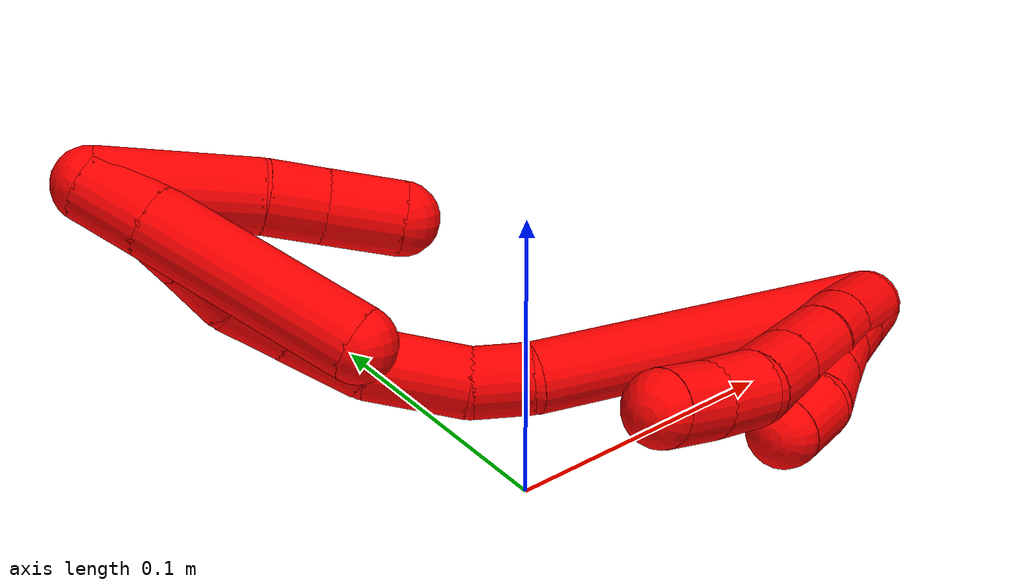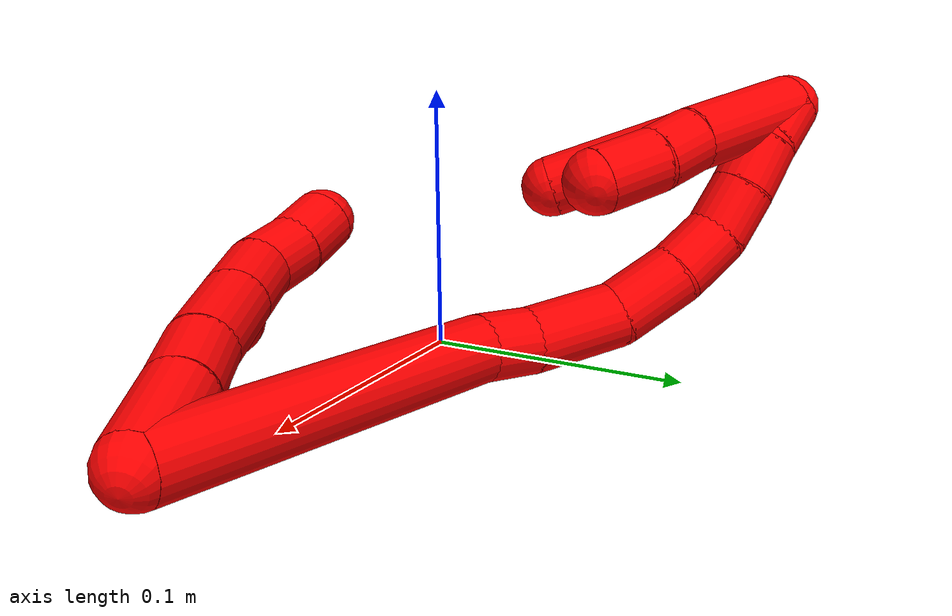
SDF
<sdf version="1.7">
 <world name="default">
  <model name="photoneo_s_sensor">
   <static>1</static>
   <pose>0 0 2 1.57079 1.57079 3.14159</pose>
   <link name="link">
    <inertial><mass>0.1</mass></inertial>
    <sensor name="sensor" type="depth">
     <update_rate>30</update_rate>
     <camera>
      <horizontal_fov>1.22</horizontal_fov>
      <image><width>1920</width><height>1200</height><format>B8G8R8</format></image>
      <clip><near>0.1</near><far>4</far></clip>
      <depth_camera><output>points</output></depth_camera>
     </camera>
     <plugin name="camera_plugin" filename="libgazebo_ros_depth_camera.so">
      <baseline>0.2</baseline>
      <alwaysOn>1</alwaysOn>
      <updateRate>0.0</updateRate>
      <cameraName>camera_ir</cameraName>
      <imageTopicName>/camera/color/image_raw</imageTopicName>
      <cameraInfoTopicName>/camera/color/camera_info</cameraInfoTopicName>
      <depthImageTopicName>/camera/depth/image_raw</depthImageTopicName>
      <depthImageCameraInfoTopicName>/camera/depth/camera_info</depthImageCameraInfoTopicName>
      <pointCloudTopicName>/camera/depth/points</pointCloudTopicName>
      <frameName>fr_optical</frameName>
      <pointCloudCutoff>0.1</pointCloudCutoff>
      <pointCloudCutoffMax>2.0</pointCloudCutoffMax>
      <distortionK1>0</distortionK1>
      <distortionK2>0</distortionK2>
      <distortionK3>0</distortionK3>
      <distortionT1>0</distortionT1>
      <distortionT2>0</distortionT2>
      <CxPrime>0</CxPrime>
      <Cx>0</Cx>
      <Cy>0</Cy>
      <focalLength>0</focalLength>
      <hackBaseline>0</hackBaseline>
     </plugin>
    </sensor>
   </link>
  </model>
  <model name="bin">
   <static>1</static>
   <link name="bottom">
    <collision name="collision-bottom">
     <pose>0 0 -0.01 0 -0 0</pose>
     <geometry><box><size>0.8 0.6 0.02</size></box></geometry>
     <surface>
      <friction><ode><mu>100</mu><mu2>100</mu2></ode></friction>
      <contact><collide_bitmask>65535</collide_bitmask></contact>
     </surface>
    </collision>
   </link>
   <link name="west_wall">
    <collision name="collision-west_wall">
     <pose>-0.41 0 0.1 0 -0 0</pose>
     <geometry><box><size>0.02 0.6 0.2</size></box></geometry>
     <surface>
      <friction><ode><mu>100</mu><mu2>100</mu2></ode></friction>
      <contact><collide_bitmask>65535</collide_bitmask></contact>
     </surface>
    </collision>
   </link>
   <link name="east_wall">
    <collision name="collision-east_wall">
     <pose>0.41 0 0.1 0 -0 0</pose>
     <geometry><box><size>0.02 0.6 0.2</size></box></geometry>
     <surface>
      <friction><ode><mu>100</mu><mu2>100</mu2></ode></friction>
      <contact><collide_bitmask>65535</collide_bitmask></contact>
     </surface>
    </collision>
   </link>
   <link name="south_wall">
    <collision name="collision-south_wall">
     <pose>0 -0.31 0.1 0 -0 0</pose>
     <geometry><box><size>0.8 0.02 0.2</size></box></geometry>
     <surface>
      <friction><ode><mu>100</mu><mu2>100</mu2></ode></friction>
      <contact><collide_bitmask>65535</collide_bitmask></contact>
     </surface>
    </collision>
   </link>
   <link name="north_wall">
    <collision name="collision-north_wall">
     <pose>0 0.31 0.1 0 -0 0</pose>
     <geometry><box><size>0.8 0.02 0.2</size></box></geometry>
     <surface>
      <friction><ode><mu>100</mu><mu2>100</mu2></ode></friction>
      <contact><collide_bitmask>65535</collide_bitmask></contact>
     </surface>
    </collision>
   </link>
  </model>
  <model name="2">
   <static>0</static>
   <link name="2">
    <collision name="collision-cylinder-e_1_2_8">
     <pose>0.000158 -0.000125 -0.016554 3.13407 0.009549 1.80724</pose>
     <geometry><cylinder><radius>0.0125</radius><length>0.03311</length></cylinder></geometry>
     <surface>
      <friction><ode><mu>1.16</mu><mu2>1.16</mu2><slip1>0</slip1><slip2>0</slip2></ode></friction>
      <contact><ode><kp>1e+06</kp><kd>1</kd><max_vel>0</max_vel><min_depth>0.001</min_depth></ode></contact>
     </surface>
    </collision>
    <visual name="visual-cylinder-e_1_2_8">
     <pose>0.000158 -0.000125 -0.016554 3.13407 0.009549 1.80724</pose>
     <geometry><cylinder><radius>0.0125</radius><length>0.03311</length></cylinder></geometry>
     <material><ambient>1 0 0 1</ambient></material>
    </visual>
    <collision name="collision-cylinder-e_2_8_9">
     <pose>0.000724 -0.0009 -0.044184 3.08288 0.036744 1.1182</pose>
     <geometry><cylinder><radius>0.0125</radius><length>0.022206</length></cylinder></geometry>
     <surface>
      <friction><ode><mu>1.16</mu><mu2>1.16</mu2><slip1>0</slip1><slip2>0</slip2></ode></friction>
      <contact><ode><kp>1e+06</kp><kd>1</kd><max_vel>0</max_vel><min_depth>0.001</min_depth></ode></contact>
     </surface>
    </collision>
    <visual name="visual-cylinder-e_2_8_9">
     <pose>0.000724 -0.0009 -0.044184 3.08288 0.036744 1.1182</pose>
     <geometry><cylinder><radius>0.0125</radius><length>0.022206</length></cylinder></geometry>
     <material><ambient>1 0 0 1</ambient></material>
    </visual>
    <collision name="collision-cylinder-e_3_9_10">
     <pose>0.001995 -0.000883 -0.07012 -3.09663 0.057932 -1.82175</pose>
     <geometry><cylinder><radius>0.0125</radius><length>0.0298</length></cylinder></geometry>
     <surface>
      <friction><ode><mu>1.16</mu><mu2>1.16</mu2><slip1>0</slip1><slip2>0</slip2></ode></friction>
      <contact><ode><kp>1e+06</kp><kd>1</kd><max_vel>0</max_vel><min_depth>0.001</min_depth></ode></contact>
     </surface>
    </collision>
    <visual name="visual-cylinder-e_3_9_10">
     <pose>0.001995 -0.000883 -0.07012 -3.09663 0.057932 -1.82175</pose>
     <geometry><cylinder><radius>0.0125</radius><length>0.0298</length></cylinder></geometry>
     <material><ambient>1 0 0 1</ambient></material>
    </visual>
    <collision name="collision-cylinder-e_4_10_11">
     <pose>0.003496 0.000408 -0.096763 -3.08883 0.054094 -1.5958</pose>
     <geometry><cylinder><radius>0.0125</radius><length>0.023633</length></cylinder></geometry>
     <surface>
      <friction><ode><mu>1.16</mu><mu2>1.16</mu2><slip1>0</slip1><slip2>0</slip2></ode></friction>
      <contact><ode><kp>1e+06</kp><kd>1</kd><max_vel>0</max_vel><min_depth>0.001</min_depth></ode></contact>
     </surface>
    </collision>
    <visual name="visual-cylinder-e_4_10_11">
     <pose>0.003496 0.000408 -0.096763 -3.08883 0.054094 -1.5958</pose>
     <geometry><cylinder><radius>0.0125</radius><length>0.023633</length></cylinder></geometry>
     <material><ambient>1 0 0 1</ambient></material>
    </visual>
    <collision name="collision-cylinder-e_5_11_12">
     <pose>0.003611 0.00478 -0.117932 -2.76152 -0.051816 0.267817</pose>
     <geometry><cylinder><radius>0.0125</radius><length>0.020243</length></cylinder></geometry>
     <surface>
      <friction><ode><mu>1.16</mu><mu2>1.16</mu2><slip1>0</slip1><slip2>0</slip2></ode></friction>
      <contact><ode><kp>1e+06</kp><kd>1</kd><max_vel>0</max_vel><min_depth>0.001</min_depth></ode></contact>
     </surface>
    </collision>
    <visual name="visual-cylinder-e_5_11_12">
     <pose>0.003611 0.00478 -0.117932 -2.76152 -0.051816 0.267817</pose>
     <geometry><cylinder><radius>0.0125</radius><length>0.020243</length></cylinder></geometry>
     <material><ambient>1 0 0 1</ambient></material>
    </visual>
    <collision name="collision-cylinder-e_6_12_6">
     <pose>0.001695 0.011483 -0.137303 -2.85405 -0.132912 0.861831</pose>
     <geometry><cylinder><radius>0.0125</radius><length>0.021009</length></cylinder></geometry>
     <surface>
      <friction><ode><mu>1.16</mu><mu2>1.16</mu2><slip1>0</slip1><slip2>0</slip2></ode></friction>
      <contact><ode><kp>1e+06</kp><kd>1</kd><max_vel>0</max_vel><min_depth>0.001</min_depth></ode></contact>
     </surface>
    </collision>
    <visual name="visual-cylinder-e_6_12_6">
     <pose>0.001695 0.011483 -0.137303 -2.85405 -0.132912 0.861831</pose>
     <geometry><cylinder><radius>0.0125</radius><length>0.021009</length></cylinder></geometry>
     <material><ambient>1 0 0 1</ambient></material>
    </visual>
    <collision name="collision-cylinder-e_1_2_13">
     <pose>0.002058 0.000193 -0.009784 -3.12185 0.20727 -2.95235</pose>
     <geometry><cylinder><radius>0.0125</radius><length>0.02</length></cylinder></geometry>
     <surface>
      <friction><ode><mu>1.16</mu><mu2>1.16</mu2><slip1>0</slip1><slip2>0</slip2></ode></friction>
      <contact><ode><kp>1e+06</kp><kd>1</kd><max_vel>0</max_vel><min_depth>0.001</min_depth></ode></contact>
     </surface>
    </collision>
    <visual name="visual-cylinder-e_1_2_13">
     <pose>0.002058 0.000193 -0.009784 -3.12185 0.20727 -2.95235</pose>
     <geometry><cylinder><radius>0.0125</radius><length>0.02</length></cylinder></geometry>
     <material><ambient>1 0 0 1</ambient></material>
    </visual>
    <collision name="collision-cylinder-e_2_13_14">
     <pose>0.005375 -0.00022 -0.02947 3.08044 0.126299 2.24049</pose>
     <geometry><cylinder><radius>0.0125</radius><length>0.02</length></cylinder></geometry>
     <surface>
      <friction><ode><mu>1.16</mu><mu2>1.16</mu2><slip1>0</slip1><slip2>0</slip2></ode></friction>
      <contact><ode><kp>1e+06</kp><kd>1</kd><max_vel>0</max_vel><min_depth>0.001</min_depth></ode></contact>
     </surface>
    </collision>
    <visual name="visual-cylinder-e_2_13_14">
     <pose>0.005375 -0.00022 -0.02947 3.08044 0.126299 2.24049</pose>
     <geometry><cylinder><radius>0.0125</radius><length>0.02</length></cylinder></geometry>
     <material><ambient>1 0 0 1</ambient></material>
    </visual>
    <collision name="collision-cylinder-e_3_14_15">
     <pose>0.009136 -0.002067 -0.048974 3.01305 0.252772 2.20389</pose>
     <geometry><cylinder><radius>0.0125</radius><length>0.02</length></cylinder></geometry>
     <surface>
      <friction><ode><mu>1.16</mu><mu2>1.16</mu2><slip1>0</slip1><slip2>0</slip2></ode></friction>
      <contact><ode><kp>1e+06</kp><kd>1</kd><max_vel>0</max_vel><min_depth>0.001</min_depth></ode></contact>
     </surface>
    </collision>
    <visual name="visual-cylinder-e_3_14_15">
     <pose>0.009136 -0.002067 -0.048974 3.01305 0.252772 2.20389</pose>
     <geometry><cylinder><radius>0.0125</radius><length>0.02</length></cylinder></geometry>
     <material><ambient>1 0 0 1</ambient></material>
    </visual>
    <collision name="collision-cylinder-e_4_15_16">
     <pose>0.014362 -0.004805 -0.068081 2.98546 0.275973 2.1156</pose>
     <geometry><cylinder><radius>0.0125</radius><length>0.02</length></cylinder></geometry>
     <surface>
      <friction><ode><mu>1.16</mu><mu2>1.16</mu2><slip1>0</slip1><slip2>0</slip2></ode></friction>
      <contact><ode><kp>1e+06</kp><kd>1</kd><max_vel>0</max_vel><min_depth>0.001</min_depth></ode></contact>
     </surface>
    </collision>
    <visual name="visual-cylinder-e_4_15_16">
     <pose>0.014362 -0.004805 -0.068081 2.98546 0.275973 2.1156</pose>
     <geometry><cylinder><radius>0.0125</radius><length>0.02</length></cylinder></geometry>
     <material><ambient>1 0 0 1</ambient></material>
    </visual>
    <collision name="collision-cylinder-e_5_16_5">
     <pose>0.018985 -0.004498 -0.087237 -2.95688 0.191042 -1.60468</pose>
     <geometry><cylinder><radius>0.0125</radius><length>0.02</length></cylinder></geometry>
     <surface>
      <friction><ode><mu>1.16</mu><mu2>1.16</mu2><slip1>0</slip1><slip2>0</slip2></ode></friction>
      <contact><ode><kp>1e+06</kp><kd>1</kd><max_vel>0</max_vel><min_depth>0.001</min_depth></ode></contact>
     </surface>
    </collision>
    <visual name="visual-cylinder-e_5_16_5">
     <pose>0.018985 -0.004498 -0.087237 -2.95688 0.191042 -1.60468</pose>
     <geometry><cylinder><radius>0.0125</radius><length>0.02</length></cylinder></geometry>
     <material><ambient>1 0 0 1</ambient></material>
    </visual>
    <collision name="collision-cylinder-e_1_2_17">
     <pose>0.000209 0.042659 -0.048506 -2.42024 0.00324 -0.008589</pose>
     <geometry><cylinder><radius>0.0125</radius><length>0.129192</length></cylinder></geometry>
     <surface>
      <friction><ode><mu>1.16</mu><mu2>1.16</mu2><slip1>0</slip1><slip2>0</slip2></ode></friction>
      <contact><ode><kp>1e+06</kp><kd>1</kd><max_vel>0</max_vel><min_depth>0.001</min_depth></ode></contact>
     </surface>
    </collision>
    <visual name="visual-cylinder-e_1_2_17">
     <pose>0.000209 0.042659 -0.048506 -2.42024 0.00324 -0.008589</pose>
     <geometry><cylinder><radius>0.0125</radius><length>0.129192</length></cylinder></geometry>
     <material><ambient>1 0 0 1</ambient></material>
    </visual>
    <collision name="collision-cylinder-e_2_17_18">
     <pose>-0.000476 0.094087 -0.102719 -2.14786 -0.085322 0.157123</pose>
     <geometry><cylinder><radius>0.0125</radius><length>0.021002</length></cylinder></geometry>
     <surface>
      <friction><ode><mu>1.16</mu><mu2>1.16</mu2><slip1>0</slip1><slip2>0</slip2></ode></friction>
      <contact><ode><kp>1e+06</kp><kd>1</kd><max_vel>0</max_vel><min_depth>0.001</min_depth></ode></contact>
     </surface>
    </collision>
    <visual name="visual-cylinder-e_2_17_18">
     <pose>-0.000476 0.094087 -0.102719 -2.14786 -0.085322 0.157123</pose>
     <geometry><cylinder><radius>0.0125</radius><length>0.021002</length></cylinder></geometry>
     <material><ambient>1 0 0 1</ambient></material>
    </visual>
    <collision name="collision-cylinder-e_3_18_19">
     <pose>-0.00729 0.117447 -0.116559 -2.07921 -0.340525 0.569369</pose>
     <geometry><cylinder><radius>0.0125</radius><length>0.035444</length></cylinder></geometry>
     <surface>
      <friction><ode><mu>1.16</mu><mu2>1.16</mu2><slip1>0</slip1><slip2>0</slip2></ode></friction>
      <contact><ode><kp>1e+06</kp><kd>1</kd><max_vel>0</max_vel><min_depth>0.001</min_depth></ode></contact>
     </surface>
    </collision>
    <visual name="visual-cylinder-e_3_18_19">
     <pose>-0.00729 0.117447 -0.116559 -2.07921 -0.340525 0.569369</pose>
     <geometry><cylinder><radius>0.0125</radius><length>0.035444</length></cylinder></geometry>
     <material><ambient>1 0 0 1</ambient></material>
    </visual>
    <collision name="collision-cylinder-e_4_19_20">
     <pose>-0.021739 0.141034 -0.131623 -2.22739 -0.644179 1.19229</pose>
     <geometry><cylinder><radius>0.0125</radius><length>0.028407</length></cylinder></geometry>
     <surface>
      <friction><ode><mu>1.16</mu><mu2>1.16</mu2><slip1>0</slip1><slip2>0</slip2></ode></friction>
      <contact><ode><kp>1e+06</kp><kd>1</kd><max_vel>0</max_vel><min_depth>0.001</min_depth></ode></contact>
     </surface>
    </collision>
    <visual name="visual-cylinder-e_4_19_20">
     <pose>-0.021739 0.141034 -0.131623 -2.22739 -0.644179 1.19229</pose>
     <geometry><cylinder><radius>0.0125</radius><length>0.028407</length></cylinder></geometry>
     <material><ambient>1 0 0 1</ambient></material>
    </visual>
    <collision name="collision-cylinder-e_5_20_21">
     <pose>-0.03724 0.155891 -0.145507 -2.44106 -0.654071 1.49669</pose>
     <geometry><cylinder><radius>0.0125</radius><length>0.022916</length></cylinder></geometry>
     <surface>
      <friction><ode><mu>1.16</mu><mu2>1.16</mu2><slip1>0</slip1><slip2>0</slip2></ode></friction>
      <contact><ode><kp>1e+06</kp><kd>1</kd><max_vel>0</max_vel><min_depth>0.001</min_depth></ode></contact>
     </surface>
    </collision>
    <visual name="visual-cylinder-e_5_20_21">
     <pose>-0.03724 0.155891 -0.145507 -2.44106 -0.654071 1.49669</pose>
     <geometry><cylinder><radius>0.0125</radius><length>0.022916</length></cylinder></geometry>
     <material><ambient>1 0 0 1</ambient></material>
    </visual>
    <collision name="collision-cylinder-e_6_21_22">
     <pose>-0.052569 0.164331 -0.15851 -2.73889 -0.904017 2.34567</pose>
     <geometry><cylinder><radius>0.0125</radius><length>0.021271</length></cylinder></geometry>
     <surface>
      <friction><ode><mu>1.16</mu><mu2>1.16</mu2><slip1>0</slip1><slip2>0</slip2></ode></friction>
      <contact><ode><kp>1e+06</kp><kd>1</kd><max_vel>0</max_vel><min_depth>0.001</min_depth></ode></contact>
     </surface>
    </collision>
    <visual name="visual-cylinder-e_6_21_22">
     <pose>-0.052569 0.164331 -0.15851 -2.73889 -0.904017 2.34567</pose>
     <geometry><cylinder><radius>0.0125</radius><length>0.021271</length></cylinder></geometry>
     <material><ambient>1 0 0 1</ambient></material>
    </visual>
    <collision name="collision-cylinder-e_7_22_23">
     <pose>-0.068998 0.169024 -0.171216 -2.83378 -0.857638 2.48735</pose>
     <geometry><cylinder><radius>0.0125</radius><length>0.021345</length></cylinder></geometry>
     <surface>
      <friction><ode><mu>1.16</mu><mu2>1.16</mu2><slip1>0</slip1><slip2>0</slip2></ode></friction>
      <contact><ode><kp>1e+06</kp><kd>1</kd><max_vel>0</max_vel><min_depth>0.001</min_depth></ode></contact>
     </surface>
    </collision>
    <visual name="visual-cylinder-e_7_22_23">
     <pose>-0.068998 0.169024 -0.171216 -2.83378 -0.857638 2.48735</pose>
     <geometry><cylinder><radius>0.0125</radius><length>0.021345</length></cylinder></geometry>
     <material><ambient>1 0 0 1</ambient></material>
    </visual>
    <collision name="collision-cylinder-e_8_23_1">
     <pose>-0.082972 0.174234 -0.185607 -2.76113 -0.616246 2.05337</pose>
     <geometry><cylinder><radius>0.0125</radius><length>0.020424</length></cylinder></geometry>
     <surface>
      <friction><ode><mu>1.16</mu><mu2>1.16</mu2><slip1>0</slip1><slip2>0</slip2></ode></friction>
      <contact><ode><kp>1e+06</kp><kd>1</kd><max_vel>0</max_vel><min_depth>0.001</min_depth></ode></contact>
     </surface>
    </collision>
    <visual name="visual-cylinder-e_8_23_1">
     <pose>-0.082972 0.174234 -0.185607 -2.76113 -0.616246 2.05337</pose>
     <geometry><cylinder><radius>0.0125</radius><length>0.020424</length></cylinder></geometry>
     <material><ambient>1 0 0 1</ambient></material>
    </visual>
    <collision name="collision-cylinder-e_1_1_24">
     <pose>-0.082536 0.158046 -0.175518 0.824588 0.236806 0.103963</pose>
     <geometry><cylinder><radius>0.0125</radius><length>0.054029</length></cylinder></geometry>
     <surface>
      <friction><ode><mu>1.16</mu><mu2>1.16</mu2><slip1>0</slip1><slip2>0</slip2></ode></friction>
      <contact><ode><kp>1e+06</kp><kd>1</kd><max_vel>0</max_vel><min_depth>0.001</min_depth></ode></contact>
     </surface>
    </collision>
    <visual name="visual-cylinder-e_1_1_24">
     <pose>-0.082536 0.158046 -0.175518 0.824588 0.236806 0.103963</pose>
     <geometry><cylinder><radius>0.0125</radius><length>0.054029</length></cylinder></geometry>
     <material><ambient>1 0 0 1</ambient></material>
    </visual>
    <collision name="collision-cylinder-e_2_24_25">
     <pose>-0.072952 0.132337 -0.150731 0.745582 0.330172 0.130125</pose>
     <geometry><cylinder><radius>0.0125</radius><length>0.020028</length></cylinder></geometry>
     <surface>
      <friction><ode><mu>1.16</mu><mu2>1.16</mu2><slip1>0</slip1><slip2>0</slip2></ode></friction>
      <contact><ode><kp>1e+06</kp><kd>1</kd><max_vel>0</max_vel><min_depth>0.001</min_depth></ode></contact>
     </surface>
    </collision>
    <visual name="visual-cylinder-e_2_24_25">
     <pose>-0.072952 0.132337 -0.150731 0.745582 0.330172 0.130125</pose>
     <geometry><cylinder><radius>0.0125</radius><length>0.020028</length></cylinder></geometry>
     <material><ambient>1 0 0 1</ambient></material>
    </visual>
    <collision name="collision-cylinder-e_3_25_4">
     <pose>-0.065617 0.116277 -0.136106 0.898701 0.320601 0.155634</pose>
     <geometry><cylinder><radius>0.0125</radius><length>0.025943</length></cylinder></geometry>
     <surface>
      <friction><ode><mu>1.16</mu><mu2>1.16</mu2><slip1>0</slip1><slip2>0</slip2></ode></friction>
      <contact><ode><kp>1e+06</kp><kd>1</kd><max_vel>0</max_vel><min_depth>0.001</min_depth></ode></contact>
     </surface>
    </collision>
    <visual name="visual-cylinder-e_3_25_4">
     <pose>-0.065617 0.116277 -0.136106 0.898701 0.320601 0.155634</pose>
     <geometry><cylinder><radius>0.0125</radius><length>0.025943</length></cylinder></geometry>
     <material><ambient>1 0 0 1</ambient></material>
    </visual>
    <collision name="collision-cylinder-e_1_1_26">
     <pose>-0.081799 0.167718 -0.191362 1.36732 0.624697 0.514527</pose>
     <geometry><cylinder><radius>0.0125</radius><length>0.024194</length></cylinder></geometry>
     <surface>
      <friction><ode><mu>1.16</mu><mu2>1.16</mu2><slip1>0</slip1><slip2>0</slip2></ode></friction>
      <contact><ode><kp>1e+06</kp><kd>1</kd><max_vel>0</max_vel><min_depth>0.001</min_depth></ode></contact>
     </surface>
    </collision>
    <visual name="visual-cylinder-e_1_1_26">
     <pose>-0.081799 0.167718 -0.191362 1.36732 0.624697 0.514527</pose>
     <geometry><cylinder><radius>0.0125</radius><length>0.024194</length></cylinder></geometry>
     <material><ambient>1 0 0 1</ambient></material>
    </visual>
    <collision name="collision-cylinder-e_2_26_3">
     <pose>-0.052468 0.128022 -0.183369 1.37363 0.627577 0.520138</pose>
     <geometry><cylinder><radius>0.0125</radius><length>0.075806</length></cylinder></geometry>
     <surface>
      <friction><ode><mu>1.16</mu><mu2>1.16</mu2><slip1>0</slip1><slip2>0</slip2></ode></friction>
      <contact><ode><kp>1e+06</kp><kd>1</kd><max_vel>0</max_vel><min_depth>0.001</min_depth></ode></contact>
     </surface>
    </collision>
    <visual name="visual-cylinder-e_2_26_3">
     <pose>-0.052468 0.128022 -0.183369 1.37363 0.627577 0.520138</pose>
     <geometry><cylinder><radius>0.0125</radius><length>0.075806</length></cylinder></geometry>
     <material><ambient>1 0 0 1</ambient></material>
    </visual>
    <collision name="collision-sphere-3">
     <pose>-0.030212 0.097936 -0.177359 0 -0 0</pose>
     <geometry><sphere><radius>0.0125</radius></sphere></geometry>
     <surface>
      <friction><ode><mu>1.16</mu><mu2>1.16</mu2><slip1>0</slip1><slip2>0</slip2></ode></friction>
      <contact><ode><kp>1e+06</kp><kd>1</kd><max_vel>0</max_vel><min_depth>0.001</min_depth></ode></contact>
     </surface>
    </collision>
    <visual name="visual-sphere-3">
     <pose>-0.030212 0.097936 -0.177359 0 -0 0</pose>
     <geometry><sphere><radius>0.0125</radius></sphere></geometry>
     <material><ambient>1 0 0 1</ambient></material>
    </visual>
    <collision name="collision-sphere-26">
     <pose>-0.074723 0.158108 -0.189379 0 -0 0</pose>
     <geometry><sphere><radius>0.0125</radius></sphere></geometry>
     <surface>
      <friction><ode><mu>1.16</mu><mu2>1.16</mu2><slip1>0</slip1><slip2>0</slip2></ode></friction>
      <contact><ode><kp>1e+06</kp><kd>1</kd><max_vel>0</max_vel><min_depth>0.001</min_depth></ode></contact>
     </surface>
    </collision>
    <visual name="visual-sphere-26">
     <pose>-0.074723 0.158108 -0.189379 0 -0 0</pose>
     <geometry><sphere><radius>0.0125</radius></sphere></geometry>
     <material><ambient>1 0 0 1</ambient></material>
    </visual>
    <collision name="collision-sphere-4">
     <pose>-0.06153 0.106644 -0.128441 0 -0 0</pose>
     <geometry><sphere><radius>0.0125</radius></sphere></geometry>
     <surface>
      <friction><ode><mu>1.16</mu><mu2>1.16</mu2><slip1>0</slip1><slip2>0</slip2></ode></friction>
      <contact><ode><kp>1e+06</kp><kd>1</kd><max_vel>0</max_vel><min_depth>0.001</min_depth></ode></contact>
     </surface>
    </collision>
    <visual name="visual-sphere-4">
     <pose>-0.06153 0.106644 -0.128441 0 -0 0</pose>
     <geometry><sphere><radius>0.0125</radius></sphere></geometry>
     <material><ambient>1 0 0 1</ambient></material>
    </visual>
    <collision name="collision-sphere-25">
     <pose>-0.069705 0.125911 -0.143771 0 -0 0</pose>
     <geometry><sphere><radius>0.0125</radius></sphere></geometry>
     <surface>
      <friction><ode><mu>1.16</mu><mu2>1.16</mu2><slip1>0</slip1><slip2>0</slip2></ode></friction>
      <contact><ode><kp>1e+06</kp><kd>1</kd><max_vel>0</max_vel><min_depth>0.001</min_depth></ode></contact>
     </surface>
    </collision>
    <visual name="visual-sphere-25">
     <pose>-0.069705 0.125911 -0.143771 0 -0 0</pose>
     <geometry><sphere><radius>0.0125</radius></sphere></geometry>
     <material><ambient>1 0 0 1</ambient></material>
    </visual>
    <collision name="collision-sphere-24">
     <pose>-0.076199 0.138764 -0.15769 0 -0 0</pose>
     <geometry><sphere><radius>0.0125</radius></sphere></geometry>
     <surface>
      <friction><ode><mu>1.16</mu><mu2>1.16</mu2><slip1>0</slip1><slip2>0</slip2></ode></friction>
      <contact><ode><kp>1e+06</kp><kd>1</kd><max_vel>0</max_vel><min_depth>0.001</min_depth></ode></contact>
     </surface>
    </collision>
    <visual name="visual-sphere-24">
     <pose>-0.076199 0.138764 -0.15769 0 -0 0</pose>
     <geometry><sphere><radius>0.0125</radius></sphere></geometry>
     <material><ambient>1 0 0 1</ambient></material>
    </visual>
    <collision name="collision-sphere-1">
     <pose>-0.088874 0.177329 -0.193345 0 -0 0</pose>
     <geometry><sphere><radius>0.0125</radius></sphere></geometry>
     <surface>
      <friction><ode><mu>1.16</mu><mu2>1.16</mu2><slip1>0</slip1><slip2>0</slip2></ode></friction>
      <contact><ode><kp>1e+06</kp><kd>1</kd><max_vel>0</max_vel><min_depth>0.001</min_depth></ode></contact>
     </surface>
    </collision>
    <visual name="visual-sphere-1">
     <pose>-0.088874 0.177329 -0.193345 0 -0 0</pose>
     <geometry><sphere><radius>0.0125</radius></sphere></geometry>
     <material><ambient>1 0 0 1</ambient></material>
    </visual>
    <collision name="collision-sphere-23">
     <pose>-0.077069 0.171139 -0.17787 0 -0 0</pose>
     <geometry><sphere><radius>0.0125</radius></sphere></geometry>
     <surface>
      <friction><ode><mu>1.16</mu><mu2>1.16</mu2><slip1>0</slip1><slip2>0</slip2></ode></friction>
      <contact><ode><kp>1e+06</kp><kd>1</kd><max_vel>0</max_vel><min_depth>0.001</min_depth></ode></contact>
     </surface>
    </collision>
    <visual name="visual-sphere-23">
     <pose>-0.077069 0.171139 -0.17787 0 -0 0</pose>
     <geometry><sphere><radius>0.0125</radius></sphere></geometry>
     <material><ambient>1 0 0 1</ambient></material>
    </visual>
    <collision name="collision-sphere-22">
     <pose>-0.060926 0.166909 -0.164562 0 -0 0</pose>
     <geometry><sphere><radius>0.0125</radius></sphere></geometry>
     <surface>
      <friction><ode><mu>1.16</mu><mu2>1.16</mu2><slip1>0</slip1><slip2>0</slip2></ode></friction>
      <contact><ode><kp>1e+06</kp><kd>1</kd><max_vel>0</max_vel><min_depth>0.001</min_depth></ode></contact>
     </surface>
    </collision>
    <visual name="visual-sphere-22">
     <pose>-0.060926 0.166909 -0.164562 0 -0 0</pose>
     <geometry><sphere><radius>0.0125</radius></sphere></geometry>
     <material><ambient>1 0 0 1</ambient></material>
    </visual>
    <collision name="collision-sphere-21">
     <pose>-0.044211 0.161753 -0.152459 0 -0 0</pose>
     <geometry><sphere><radius>0.0125</radius></sphere></geometry>
     <surface>
      <friction><ode><mu>1.16</mu><mu2>1.16</mu2><slip1>0</slip1><slip2>0</slip2></ode></friction>
      <contact><ode><kp>1e+06</kp><kd>1</kd><max_vel>0</max_vel><min_depth>0.001</min_depth></ode></contact>
     </surface>
    </collision>
    <visual name="visual-sphere-21">
     <pose>-0.044211 0.161753 -0.152459 0 -0 0</pose>
     <geometry><sphere><radius>0.0125</radius></sphere></geometry>
     <material><ambient>1 0 0 1</ambient></material>
    </visual>
    <collision name="collision-sphere-12">
     <pose>0.003087 0.00853 -0.127319 0 -0 0</pose>
     <geometry><sphere><radius>0.0125</radius></sphere></geometry>
     <surface>
      <friction><ode><mu>1.16</mu><mu2>1.16</mu2><slip1>0</slip1><slip2>0</slip2></ode></friction>
      <contact><ode><kp>1e+06</kp><kd>1</kd><max_vel>0</max_vel><min_depth>0.001</min_depth></ode></contact>
     </surface>
    </collision>
    <visual name="visual-sphere-12">
     <pose>0.003087 0.00853 -0.127319 0 -0 0</pose>
     <geometry><sphere><radius>0.0125</radius></sphere></geometry>
     <material><ambient>1 0 0 1</ambient></material>
    </visual>
    <collision name="collision-sphere-11">
     <pose>0.004135 0.00103 -0.108546 0 -0 0</pose>
     <geometry><sphere><radius>0.0125</radius></sphere></geometry>
     <surface>
      <friction><ode><mu>1.16</mu><mu2>1.16</mu2><slip1>0</slip1><slip2>0</slip2></ode></friction>
      <contact><ode><kp>1e+06</kp><kd>1</kd><max_vel>0</max_vel><min_depth>0.001</min_depth></ode></contact>
     </surface>
    </collision>
    <visual name="visual-sphere-11">
     <pose>0.004135 0.00103 -0.108546 0 -0 0</pose>
     <geometry><sphere><radius>0.0125</radius></sphere></geometry>
     <material><ambient>1 0 0 1</ambient></material>
    </visual>
    <collision name="collision-sphere-10">
     <pose>0.002857 -0.000214 -0.08498 0 -0 0</pose>
     <geometry><sphere><radius>0.0125</radius></sphere></geometry>
     <surface>
      <friction><ode><mu>1.16</mu><mu2>1.16</mu2><slip1>0</slip1><slip2>0</slip2></ode></friction>
      <contact><ode><kp>1e+06</kp><kd>1</kd><max_vel>0</max_vel><min_depth>0.001</min_depth></ode></contact>
     </surface>
    </collision>
    <visual name="visual-sphere-10">
     <pose>0.002857 -0.000214 -0.08498 0 -0 0</pose>
     <geometry><sphere><radius>0.0125</radius></sphere></geometry>
     <material><ambient>1 0 0 1</ambient></material>
    </visual>
    <collision name="collision-sphere-9">
     <pose>0.001132 -0.001551 -0.05526 0 -0 0</pose>
     <geometry><sphere><radius>0.0125</radius></sphere></geometry>
     <surface>
      <friction><ode><mu>1.16</mu><mu2>1.16</mu2><slip1>0</slip1><slip2>0</slip2></ode></friction>
      <contact><ode><kp>1e+06</kp><kd>1</kd><max_vel>0</max_vel><min_depth>0.001</min_depth></ode></contact>
     </surface>
    </collision>
    <visual name="visual-sphere-9">
     <pose>0.001132 -0.001551 -0.05526 0 -0 0</pose>
     <geometry><sphere><radius>0.0125</radius></sphere></geometry>
     <material><ambient>1 0 0 1</ambient></material>
    </visual>
    <collision name="collision-sphere-2">
     <geometry><sphere><radius>0.0125</radius></sphere></geometry>
     <surface>
      <friction><ode><mu>1.16</mu><mu2>1.16</mu2><slip1>0</slip1><slip2>0</slip2></ode></friction>
      <contact><ode><kp>1e+06</kp><kd>1</kd><max_vel>0</max_vel><min_depth>0.001</min_depth></ode></contact>
     </surface>
    </collision>
    <visual name="visual-sphere-2">
     <geometry><sphere><radius>0.0125</radius></sphere></geometry>
     <material><ambient>1 0 0 1</ambient></material>
    </visual>
    <collision name="collision-sphere-19">
     <pose>-0.013209 0.132038 -0.12469 0 -0 0</pose>
     <geometry><sphere><radius>0.0125</radius></sphere></geometry>
     <surface>
      <friction><ode><mu>1.16</mu><mu2>1.16</mu2><slip1>0</slip1><slip2>0</slip2></ode></friction>
      <contact><ode><kp>1e+06</kp><kd>1</kd><max_vel>0</max_vel><min_depth>0.001</min_depth></ode></contact>
     </surface>
    </collision>
    <visual name="visual-sphere-19">
     <pose>-0.013209 0.132038 -0.12469 0 -0 0</pose>
     <geometry><sphere><radius>0.0125</radius></sphere></geometry>
     <material><ambient>1 0 0 1</ambient></material>
    </visual>
    <collision name="collision-sphere-8">
     <pose>0.000316 -0.000249 -0.033108 0 -0 0</pose>
     <geometry><sphere><radius>0.0125</radius></sphere></geometry>
     <surface>
      <friction><ode><mu>1.16</mu><mu2>1.16</mu2><slip1>0</slip1><slip2>0</slip2></ode></friction>
      <contact><ode><kp>1e+06</kp><kd>1</kd><max_vel>0</max_vel><min_depth>0.001</min_depth></ode></contact>
     </surface>
    </collision>
    <visual name="visual-sphere-8">
     <pose>0.000316 -0.000249 -0.033108 0 -0 0</pose>
     <geometry><sphere><radius>0.0125</radius></sphere></geometry>
     <material><ambient>1 0 0 1</ambient></material>
    </visual>
    <collision name="collision-sphere-6">
     <pose>0.000303 0.014435 -0.147287 0 -0 0</pose>
     <geometry><sphere><radius>0.0125</radius></sphere></geometry>
     <surface>
      <friction><ode><mu>1.16</mu><mu2>1.16</mu2><slip1>0</slip1><slip2>0</slip2></ode></friction>
      <contact><ode><kp>1e+06</kp><kd>1</kd><max_vel>0</max_vel><min_depth>0.001</min_depth></ode></contact>
     </surface>
    </collision>
    <visual name="visual-sphere-6">
     <pose>0.000303 0.014435 -0.147287 0 -0 0</pose>
     <geometry><sphere><radius>0.0125</radius></sphere></geometry>
     <material><ambient>1 0 0 1</ambient></material>
    </visual>
    <collision name="collision-sphere-13">
     <pose>0.004116 0.000386 -0.019568 0 -0 0</pose>
     <geometry><sphere><radius>0.0125</radius></sphere></geometry>
     <surface>
      <friction><ode><mu>1.16</mu><mu2>1.16</mu2><slip1>0</slip1><slip2>0</slip2></ode></friction>
      <contact><ode><kp>1e+06</kp><kd>1</kd><max_vel>0</max_vel><min_depth>0.001</min_depth></ode></contact>
     </surface>
    </collision>
    <visual name="visual-sphere-13">
     <pose>0.004116 0.000386 -0.019568 0 -0 0</pose>
     <geometry><sphere><radius>0.0125</radius></sphere></geometry>
     <material><ambient>1 0 0 1</ambient></material>
    </visual>
    <collision name="collision-sphere-14">
     <pose>0.006635 -0.000826 -0.039372 0 -0 0</pose>
     <geometry><sphere><radius>0.0125</radius></sphere></geometry>
     <surface>
      <friction><ode><mu>1.16</mu><mu2>1.16</mu2><slip1>0</slip1><slip2>0</slip2></ode></friction>
      <contact><ode><kp>1e+06</kp><kd>1</kd><max_vel>0</max_vel><min_depth>0.001</min_depth></ode></contact>
     </surface>
    </collision>
    <visual name="visual-sphere-14">
     <pose>0.006635 -0.000826 -0.039372 0 -0 0</pose>
     <geometry><sphere><radius>0.0125</radius></sphere></geometry>
     <material><ambient>1 0 0 1</ambient></material>
    </visual>
    <collision name="collision-sphere-15">
     <pose>0.011637 -0.003309 -0.058576 0 -0 0</pose>
     <geometry><sphere><radius>0.0125</radius></sphere></geometry>
     <surface>
      <friction><ode><mu>1.16</mu><mu2>1.16</mu2><slip1>0</slip1><slip2>0</slip2></ode></friction>
      <contact><ode><kp>1e+06</kp><kd>1</kd><max_vel>0</max_vel><min_depth>0.001</min_depth></ode></contact>
     </surface>
    </collision>
    <visual name="visual-sphere-15">
     <pose>0.011637 -0.003309 -0.058576 0 -0 0</pose>
     <geometry><sphere><radius>0.0125</radius></sphere></geometry>
     <material><ambient>1 0 0 1</ambient></material>
    </visual>
    <collision name="collision-sphere-16">
     <pose>0.017086 -0.006301 -0.077586 0 -0 0</pose>
     <geometry><sphere><radius>0.0125</radius></sphere></geometry>
     <surface>
      <friction><ode><mu>1.16</mu><mu2>1.16</mu2><slip1>0</slip1><slip2>0</slip2></ode></friction>
      <contact><ode><kp>1e+06</kp><kd>1</kd><max_vel>0</max_vel><min_depth>0.001</min_depth></ode></contact>
     </surface>
    </collision>
    <visual name="visual-sphere-16">
     <pose>0.017086 -0.006301 -0.077586 0 -0 0</pose>
     <geometry><sphere><radius>0.0125</radius></sphere></geometry>
     <material><ambient>1 0 0 1</ambient></material>
    </visual>
    <collision name="collision-sphere-5">
     <pose>0.020884 -0.002694 -0.096888 0 -0 0</pose>
     <geometry><sphere><radius>0.0125</radius></sphere></geometry>
     <surface>
      <friction><ode><mu>1.16</mu><mu2>1.16</mu2><slip1>0</slip1><slip2>0</slip2></ode></friction>
      <contact><ode><kp>1e+06</kp><kd>1</kd><max_vel>0</max_vel><min_depth>0.001</min_depth></ode></contact>
     </surface>
    </collision>
    <visual name="visual-sphere-5">
     <pose>0.020884 -0.002694 -0.096888 0 -0 0</pose>
     <geometry><sphere><radius>0.0125</radius></sphere></geometry>
     <material><ambient>1 0 0 1</ambient></material>
    </visual>
    <collision name="collision-sphere-17">
     <pose>0.000419 0.085318 -0.097011 0 -0 0</pose>
     <geometry><sphere><radius>0.0125</radius></sphere></geometry>
     <surface>
      <friction><ode><mu>1.16</mu><mu2>1.16</mu2><slip1>0</slip1><slip2>0</slip2></ode></friction>
      <contact><ode><kp>1e+06</kp><kd>1</kd><max_vel>0</max_vel><min_depth>0.001</min_depth></ode></contact>
     </surface>
    </collision>
    <visual name="visual-sphere-17">
     <pose>0.000419 0.085318 -0.097011 0 -0 0</pose>
     <geometry><sphere><radius>0.0125</radius></sphere></geometry>
     <material><ambient>1 0 0 1</ambient></material>
    </visual>
    <collision name="collision-sphere-18">
     <pose>-0.001371 0.102855 -0.108427 0 -0 0</pose>
     <geometry><sphere><radius>0.0125</radius></sphere></geometry>
     <surface>
      <friction><ode><mu>1.16</mu><mu2>1.16</mu2><slip1>0</slip1><slip2>0</slip2></ode></friction>
      <contact><ode><kp>1e+06</kp><kd>1</kd><max_vel>0</max_vel><min_depth>0.001</min_depth></ode></contact>
     </surface>
    </collision>
    <visual name="visual-sphere-18">
     <pose>-0.001371 0.102855 -0.108427 0 -0 0</pose>
     <geometry><sphere><radius>0.0125</radius></sphere></geometry>
     <material><ambient>1 0 0 1</ambient></material>
    </visual>
    <collision name="collision-sphere-20">
     <pose>-0.030268 0.15003 -0.138556 0 -0 0</pose>
     <geometry><sphere><radius>0.0125</radius></sphere></geometry>
     <surface>
      <friction><ode><mu>1.16</mu><mu2>1.16</mu2><slip1>0</slip1><slip2>0</slip2></ode></friction>
      <contact><ode><kp>1e+06</kp><kd>1</kd><max_vel>0</max_vel><min_depth>0.001</min_depth></ode></contact>
     </surface>
    </collision>
    <visual name="visual-sphere-20">
     <pose>-0.030268 0.15003 -0.138556 0 -0 0</pose>
     <geometry><sphere><radius>0.0125</radius></sphere></geometry>
     <material><ambient>1 0 0 1</ambient></material>
    </visual>
    <inertial>
     <pose>-0.024409 0.077238 -0.108076 0 -0 0</pose>
     <mass>0.75</mass>
     <inertia>
      <ixx>0.000266</ixx>
      <ixy>0</ixy>
      <ixz>0</ixz>
      <iyy>-6.7e-05</iyy>
      <iyz>0</iyz>
      <izz>-0.000137</izz>
     </inertia>
    </inertial>
   </link>
   <pose>0.154464 -0.001389 0.011497 -2.31017 1.13279 -1.8716</pose>
  </model>
 </world>
</sdf>
